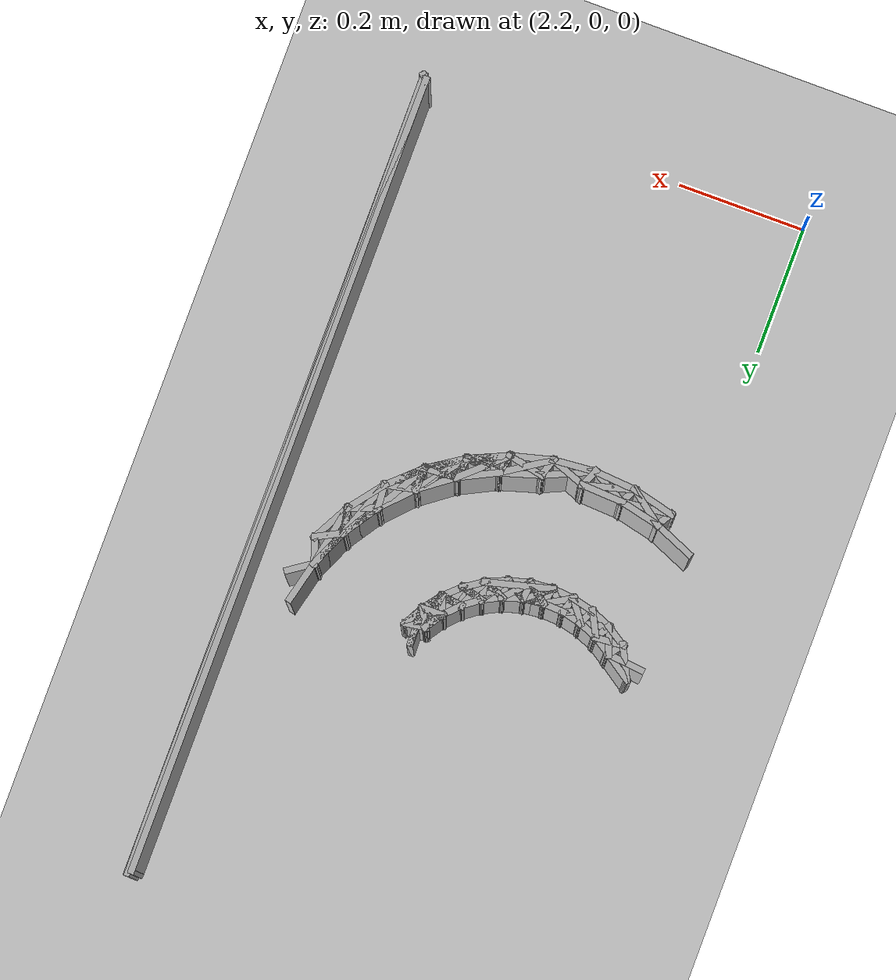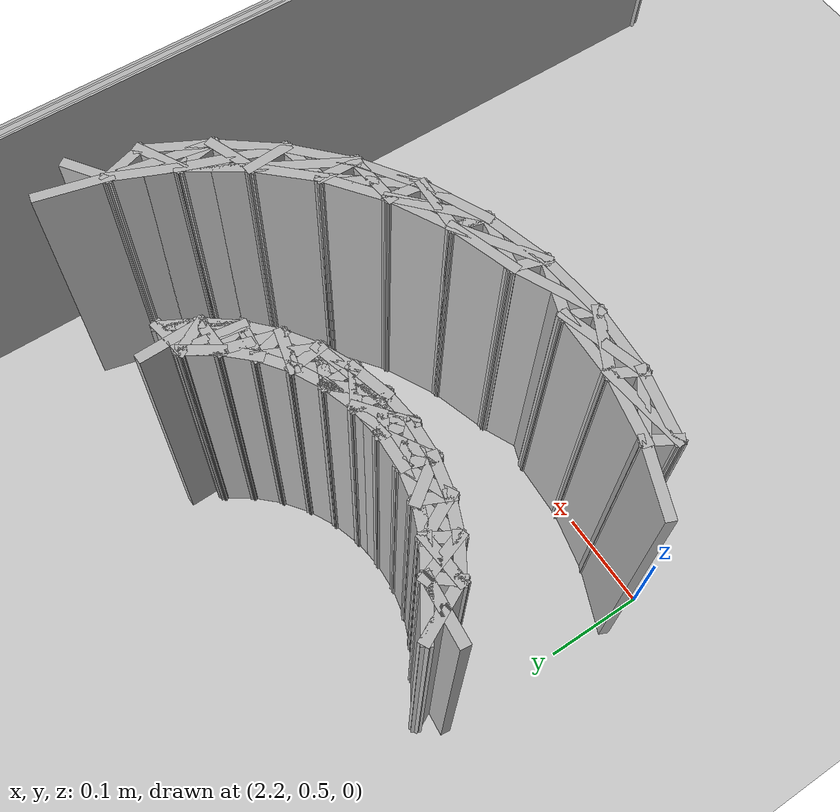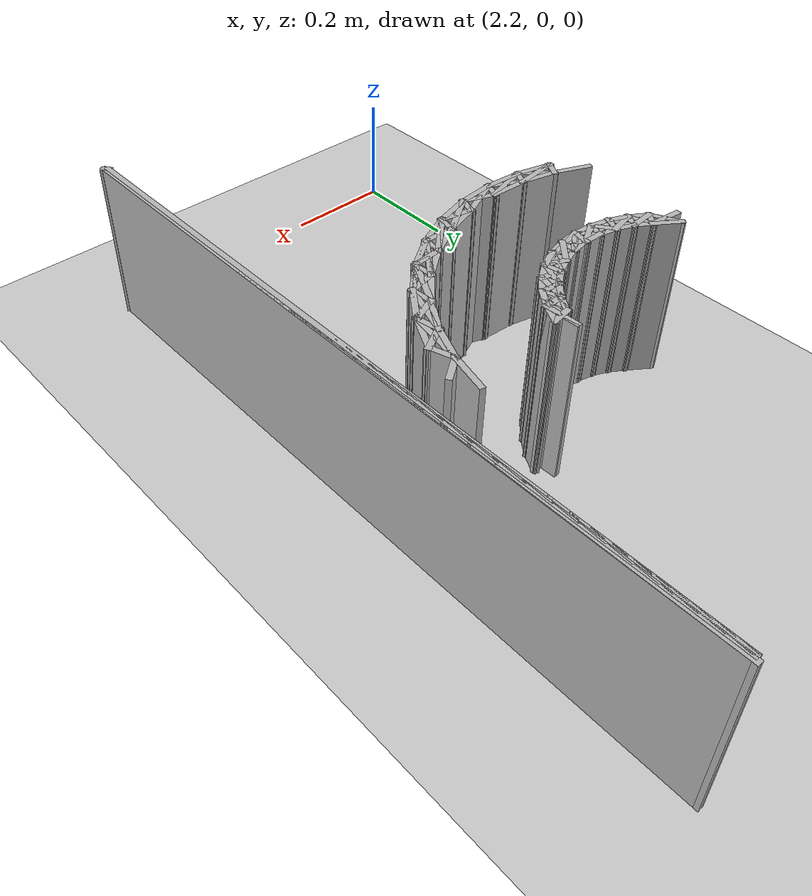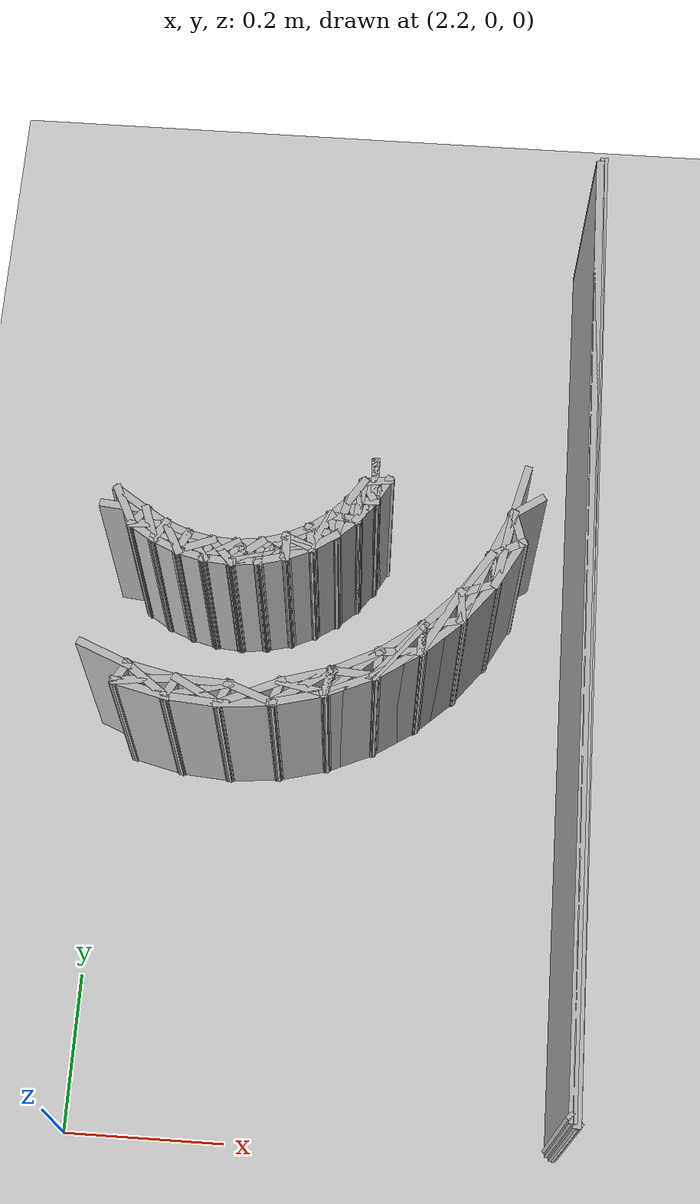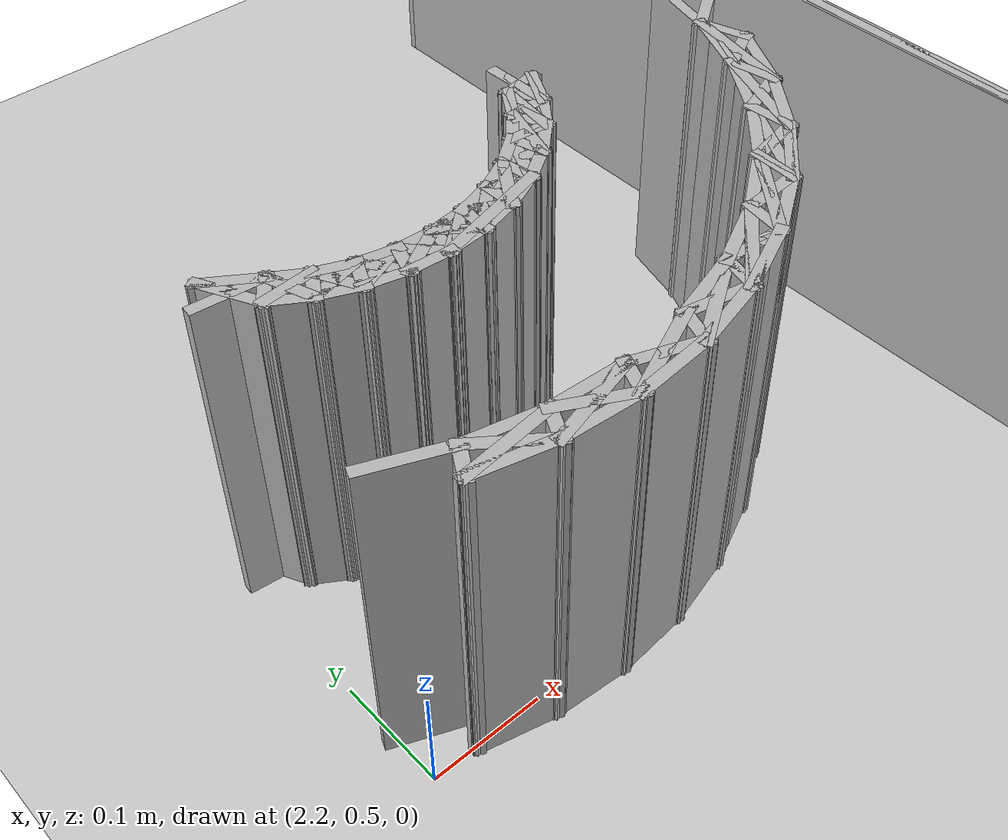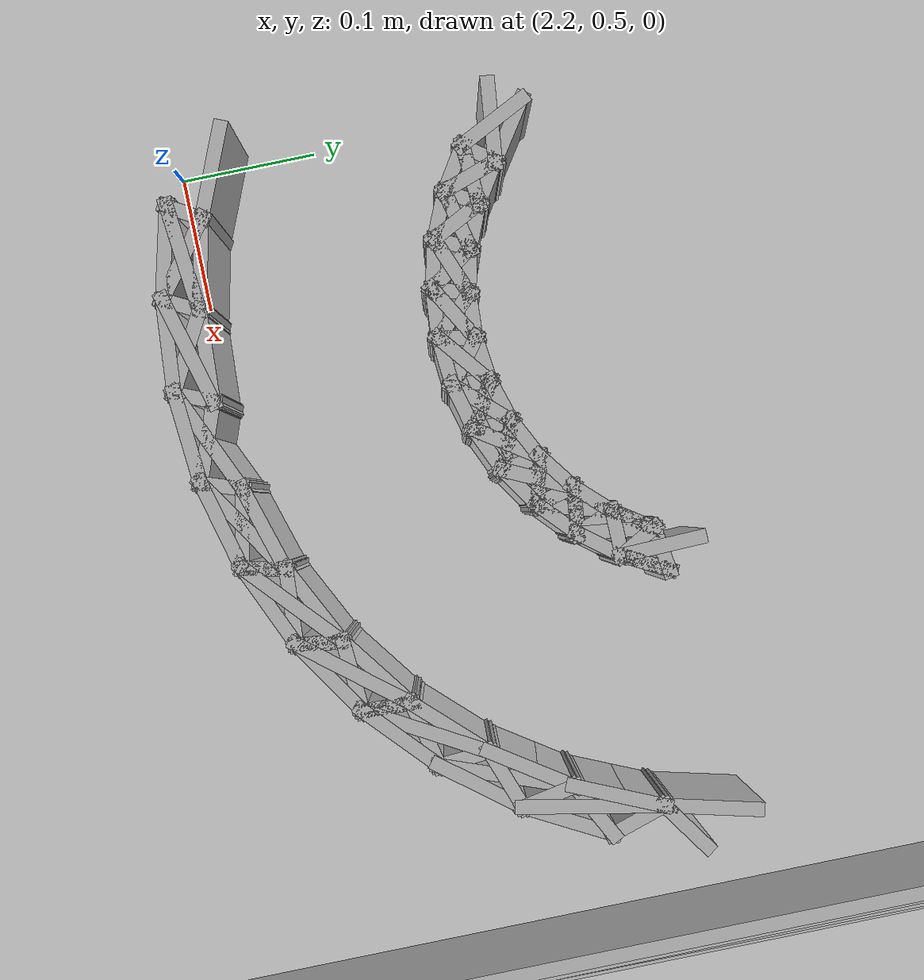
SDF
<sdf version="1.8">
 <world name="rosy_road">
  <model name="ground_plane">
   <link name="l">
    <visual name="v"><geometry><plane><normal>0 0 1</normal><size>4 2</size></plane></geometry></visual>
    <collision name="v"><geometry><plane><normal>0 0 1</normal><size>4 2</size></plane></geometry></collision>
   </link>
  </model>
  <model name="walls">
   <static>true</static>
   <link name="wall_014">
    <pose>2.8051 0.6425 0.150 0 0 1.5708</pose>
    <visual name="v"><geometry><box><size>1.2621 0.0100 0.300</size></box></geometry></visual>
    <collision name="c"><geometry><box><size>1.2621 0.0100 0.300</size></box></geometry></collision>
   </link>
   <link name="wall_015">
    <pose>2.8076 0.6401 0.150 0 0 -1.5668</pose>
    <visual name="v"><geometry><box><size>1.2671 0.0100 0.300</size></box></geometry></visual>
    <collision name="c"><geometry><box><size>1.2671 0.0100 0.300</size></box></geometry></collision>
   </link>
   <link name="wall_016">
    <pose>2.8076 0.0150 0.150 0 0 2.3562</pose>
    <visual name="v"><geometry><box><size>0.0200 0.0100 0.300</size></box></geometry></visual>
    <collision name="c"><geometry><box><size>0.0200 0.0100 0.300</size></box></geometry></collision>
   </link>
   <link name="wall_017">
    <pose>2.8076 0.6450 0.150 0 0 1.5668</pose>
    <visual name="v"><geometry><box><size>1.2671 0.0100 0.300</size></box></geometry></visual>
    <collision name="c"><geometry><box><size>1.2671 0.0100 0.300</size></box></geometry></collision>
   </link>
   <link name="wall_018">
    <pose>2.8101 0.6425 0.150 0 0 -1.5708</pose>
    <visual name="v"><geometry><box><size>1.2721 0.0100 0.300</size></box></geometry></visual>
    <collision name="c"><geometry><box><size>1.2721 0.0100 0.300</size></box></geometry></collision>
   </link>
   <link name="wall_230">
    <pose>2.7181 0.7805 0.150 0 0 -1.8131</pose>
    <visual name="v"><geometry><box><size>0.0749 0.0100 0.300</size></box></geometry></visual>
    <collision name="c"><geometry><box><size>0.0749 0.0100 0.300</size></box></geometry></collision>
   </link>
   <link name="wall_250">
    <pose>2.6979 0.7212 0.150 0 0 -1.9847</pose>
    <visual name="v"><geometry><box><size>0.0749 0.0100 0.300</size></box></geometry></visual>
    <collision name="c"><geometry><box><size>0.0749 0.0100 0.300</size></box></geometry></collision>
   </link>
   <link name="wall_251">
    <pose>2.6979 0.7212 0.150 0 0 1.1569</pose>
    <visual name="v"><geometry><box><size>0.0749 0.0100 0.300</size></box></geometry></visual>
    <collision name="c"><geometry><box><size>0.0749 0.0100 0.300</size></box></geometry></collision>
   </link>
   <link name="wall_252">
    <pose>2.7014 0.7026 0.150 0 0 -1.7625</pose>
    <visual name="v"><geometry><box><size>0.1086 0.0100 0.300</size></box></geometry></visual>
    <collision name="c"><geometry><box><size>0.1086 0.0100 0.300</size></box></geometry></collision>
   </link>
   <link name="wall_253">
    <pose>2.6888 0.6738 0.150 0 0 1.7542</pose>
    <visual name="v"><geometry><box><size>0.0498 0.0100 0.300</size></box></geometry></visual>
    <collision name="c"><geometry><box><size>0.0498 0.0100 0.300</size></box></geometry></collision>
   </link>
   <link name="wall_254">
    <pose>2.6679 0.6662 0.150 0 0 -2.1584</pose>
    <visual name="v"><geometry><box><size>0.0750 0.0100 0.300</size></box></geometry></visual>
    <collision name="c"><geometry><box><size>0.0750 0.0100 0.300</size></box></geometry></collision>
   </link>
   <link name="wall_255">
    <pose>2.6713 0.6476 0.150 0 0 0.3488</pose>
    <visual name="v"><geometry><box><size>0.0565 0.0100 0.300</size></box></geometry></visual>
    <collision name="c"><geometry><box><size>0.0565 0.0100 0.300</size></box></geometry></collision>
   </link>
   <link name="wall_256">
    <pose>2.6725 0.6298 0.150 0 0 -2.2305</pose>
    <visual name="v"><geometry><box><size>0.0763 0.0100 0.300</size></box></geometry></visual>
    <collision name="c"><geometry><box><size>0.0763 0.0100 0.300</size></box></geometry></collision>
   </link>
   <link name="wall_257">
    <pose>2.6691 0.6484 0.150 0 0 1.2170</pose>
    <visual name="v"><geometry><box><size>0.1058 0.0100 0.300</size></box></geometry></visual>
    <collision name="c"><geometry><box><size>0.1058 0.0100 0.300</size></box></geometry></collision>
   </link>
   <link name="wall_258">
    <pose>2.7039 0.7021 0.150 0 0 0.4817</pose>
    <visual name="v"><geometry><box><size>0.0541 0.0100 0.300</size></box></geometry></visual>
    <collision name="c"><geometry><box><size>0.0541 0.0100 0.300</size></box></geometry></collision>
   </link>
   <link name="wall_259">
    <pose>2.7166 0.7310 0.150 0 0 1.8759</pose>
    <visual name="v"><geometry><box><size>0.0519 0.0100 0.300</size></box></geometry></visual>
    <collision name="c"><geometry><box><size>0.0519 0.0100 0.300</size></box></geometry></collision>
   </link>
   <link name="wall_260">
    <pose>2.7270 0.7614 0.150 0 0 0.6074</pose>
    <visual name="v"><geometry><box><size>0.0519 0.0100 0.300</size></box></geometry></visual>
    <collision name="c"><geometry><box><size>0.0519 0.0100 0.300</size></box></geometry></collision>
   </link>
   <link name="wall_261">
    <pose>2.7074 0.6835 0.150 0 0 -2.0629</pose>
    <visual name="v"><geometry><box><size>0.0763 0.0100 0.300</size></box></geometry></visual>
    <collision name="c"><geometry><box><size>0.0763 0.0100 0.300</size></box></geometry></collision>
   </link>
   <link name="wall_274">
    <pose>2.6888 0.6738 0.150 0 0 -1.3874</pose>
    <visual name="v"><geometry><box><size>0.0498 0.0100 0.300</size></box></geometry></visual>
    <collision name="c"><geometry><box><size>0.0498 0.0100 0.300</size></box></geometry></collision>
   </link>
   <link name="wall_275">
    <pose>2.6292 0.5825 0.150 0 0 -2.3925</pose>
    <visual name="v"><geometry><box><size>0.0763 0.0100 0.300</size></box></geometry></visual>
    <collision name="c"><geometry><box><size>0.0763 0.0100 0.300</size></box></geometry></collision>
   </link>
   <link name="wall_276">
    <pose>2.6280 0.6003 0.150 0 0 1.0580</pose>
    <visual name="v"><geometry><box><size>0.1031 0.0100 0.300</size></box></geometry></visual>
    <collision name="c"><geometry><box><size>0.1031 0.0100 0.300</size></box></geometry></collision>
   </link>
   <link name="wall_277">
    <pose>2.6288 0.6171 0.150 0 0 -2.3292</pose>
    <visual name="v"><geometry><box><size>0.0750 0.0100 0.300</size></box></geometry></visual>
    <collision name="c"><geometry><box><size>0.0750 0.0100 0.300</size></box></geometry></collision>
   </link>
   <link name="wall_278">
    <pose>2.6300 0.5993 0.150 0 0 0.2175</pose>
    <visual name="v"><geometry><box><size>0.0588 0.0100 0.300</size></box></geometry></visual>
    <collision name="c"><geometry><box><size>0.0588 0.0100 0.300</size></box></geometry></collision>
   </link>
   <link name="wall_279">
    <pose>2.6516 0.6222 0.150 0 0 1.6381</pose>
    <visual name="v"><geometry><box><size>0.0477 0.0100 0.300</size></box></geometry></visual>
    <collision name="c"><geometry><box><size>0.0477 0.0100 0.300</size></box></geometry></collision>
   </link>
   <link name="wall_280">
    <pose>2.6679 0.6662 0.150 0 0 0.9832</pose>
    <visual name="v"><geometry><box><size>0.0750 0.0100 0.300</size></box></geometry></visual>
    <collision name="c"><geometry><box><size>0.0750 0.0100 0.300</size></box></geometry></collision>
   </link>
   <link name="wall_281">
    <pose>2.7039 0.7021 0.150 0 0 0.4817</pose>
    <visual name="v"><geometry><box><size>0.0541 0.0100 0.300</size></box></geometry></visual>
    <collision name="c"><geometry><box><size>0.0541 0.0100 0.300</size></box></geometry></collision>
   </link>
   <link name="wall_282">
    <pose>2.7166 0.7310 0.150 0 0 1.8759</pose>
    <visual name="v"><geometry><box><size>0.0519 0.0100 0.300</size></box></geometry></visual>
    <collision name="c"><geometry><box><size>0.0519 0.0100 0.300</size></box></geometry></collision>
   </link>
   <link name="wall_283">
    <pose>2.7270 0.7614 0.150 0 0 0.6074</pose>
    <visual name="v"><geometry><box><size>0.0519 0.0100 0.300</size></box></geometry></visual>
    <collision name="c"><geometry><box><size>0.0519 0.0100 0.300</size></box></geometry></collision>
   </link>
   <link name="wall_290">
    <pose>2.5796 0.5598 0.150 0 0 -2.2447</pose>
    <visual name="v"><geometry><box><size>0.1003 0.0100 0.300</size></box></geometry></visual>
    <collision name="c"><geometry><box><size>0.1003 0.0100 0.300</size></box></geometry></collision>
   </link>
   <link name="wall_291">
    <pose>2.5789 0.5430 0.150 0 0 0.5815</pose>
    <visual name="v"><geometry><box><size>0.0763 0.0100 0.300</size></box></geometry></visual>
    <collision name="c"><geometry><box><size>0.0763 0.0100 0.300</size></box></geometry></collision>
   </link>
   <link name="wall_292">
    <pose>2.5811 0.5587 0.150 0 0 -3.0644</pose>
    <visual name="v"><geometry><box><size>0.0612 0.0100 0.300</size></box></geometry></visual>
    <collision name="c"><geometry><box><size>0.0612 0.0100 0.300</size></box></geometry></collision>
   </link>
   <link name="wall_293">
    <pose>2.5818 0.5756 0.150 0 0 0.6387</pose>
    <visual name="v"><geometry><box><size>0.0749 0.0100 0.300</size></box></geometry></visual>
    <collision name="c"><geometry><box><size>0.0749 0.0100 0.300</size></box></geometry></collision>
   </link>
   <link name="wall_294">
    <pose>2.6064 0.5775 0.150 0 0 -1.6123</pose>
    <visual name="v"><geometry><box><size>0.0457 0.0100 0.300</size></box></geometry></visual>
    <collision name="c"><geometry><box><size>0.0457 0.0100 0.300</size></box></geometry></collision>
   </link>
   <link name="wall_295">
    <pose>2.6292 0.5825 0.150 0 0 0.7491</pose>
    <visual name="v"><geometry><box><size>0.0763 0.0100 0.300</size></box></geometry></visual>
    <collision name="c"><geometry><box><size>0.0763 0.0100 0.300</size></box></geometry></collision>
   </link>
   <link name="wall_296">
    <pose>2.6516 0.6222 0.150 0 0 1.6381</pose>
    <visual name="v"><geometry><box><size>0.0477 0.0100 0.300</size></box></geometry></visual>
    <collision name="c"><geometry><box><size>0.0477 0.0100 0.300</size></box></geometry></collision>
   </link>
   <link name="wall_297">
    <pose>2.6713 0.6476 0.150 0 0 0.3488</pose>
    <visual name="v"><geometry><box><size>0.0565 0.0100 0.300</size></box></geometry></visual>
    <collision name="c"><geometry><box><size>0.0565 0.0100 0.300</size></box></geometry></collision>
   </link>
   <link name="wall_303">
    <pose>2.5789 0.5430 0.150 0 0 -2.5601</pose>
    <visual name="v"><geometry><box><size>0.0763 0.0100 0.300</size></box></geometry></visual>
    <collision name="c"><geometry><box><size>0.0763 0.0100 0.300</size></box></geometry></collision>
   </link>
   <link name="wall_304">
    <pose>2.5543 0.5410 0.150 0 0 1.4258</pose>
    <visual name="v"><geometry><box><size>0.0438 0.0100 0.300</size></box></geometry></visual>
    <collision name="c"><geometry><box><size>0.0438 0.0100 0.300</size></box></geometry></collision>
   </link>
   <link name="wall_305">
    <pose>2.5811 0.5587 0.150 0 0 0.0772</pose>
    <visual name="v"><geometry><box><size>0.0612 0.0100 0.300</size></box></geometry></visual>
    <collision name="c"><geometry><box><size>0.0612 0.0100 0.300</size></box></geometry></collision>
   </link>
   <link name="wall_306">
    <pose>2.6064 0.5775 0.150 0 0 1.5293</pose>
    <visual name="v"><geometry><box><size>0.0457 0.0100 0.300</size></box></geometry></visual>
    <collision name="c"><geometry><box><size>0.0457 0.0100 0.300</size></box></geometry></collision>
   </link>
   <link name="wall_307">
    <pose>2.5249 0.5280 0.150 0 0 -2.4041</pose>
    <visual name="v"><geometry><box><size>0.0977 0.0100 0.300</size></box></geometry></visual>
    <collision name="c"><geometry><box><size>0.0977 0.0100 0.300</size></box></geometry></collision>
   </link>
   <link name="wall_308">
    <pose>2.5226 0.5122 0.150 0 0 0.4178</pose>
    <visual name="v"><geometry><box><size>0.0763 0.0100 0.300</size></box></geometry></visual>
    <collision name="c"><geometry><box><size>0.0763 0.0100 0.300</size></box></geometry></collision>
   </link>
   <link name="wall_309">
    <pose>2.5261 0.5269 0.150 0 0 3.0798</pose>
    <visual name="v"><geometry><box><size>0.0638 0.0100 0.300</size></box></geometry></visual>
    <collision name="c"><geometry><box><size>0.0638 0.0100 0.300</size></box></geometry></collision>
   </link>
   <link name="wall_310">
    <pose>2.5284 0.5426 0.150 0 0 0.4658</pose>
    <visual name="v"><geometry><box><size>0.0750 0.0100 0.300</size></box></geometry></visual>
    <collision name="c"><geometry><box><size>0.0750 0.0100 0.300</size></box></geometry></collision>
   </link>
   <link name="wall_311">
    <pose>2.5543 0.5410 0.150 0 0 -1.7158</pose>
    <visual name="v"><geometry><box><size>0.0438 0.0100 0.300</size></box></geometry></visual>
    <collision name="c"><geometry><box><size>0.0438 0.0100 0.300</size></box></geometry></collision>
   </link>
   <link name="wall_312">
    <pose>2.5796 0.5598 0.150 0 0 0.8969</pose>
    <visual name="v"><geometry><box><size>0.1003 0.0100 0.300</size></box></geometry></visual>
    <collision name="c"><geometry><box><size>0.1003 0.0100 0.300</size></box></geometry></collision>
   </link>
   <link name="wall_313">
    <pose>2.6300 0.5993 0.150 0 0 0.2175</pose>
    <visual name="v"><geometry><box><size>0.0588 0.0100 0.300</size></box></geometry></visual>
    <collision name="c"><geometry><box><size>0.0588 0.0100 0.300</size></box></geometry></collision>
   </link>
   <link name="wall_319">
    <pose>2.4621 0.4911 0.150 0 0 0.2529</pose>
    <visual name="v"><geometry><box><size>0.0763 0.0100 0.300</size></box></geometry></visual>
    <collision name="c"><geometry><box><size>0.0763 0.0100 0.300</size></box></geometry></collision>
   </link>
   <link name="wall_320">
    <pose>2.4666 0.5048 0.150 0 0 2.9355</pose>
    <visual name="v"><geometry><box><size>0.0662 0.0100 0.300</size></box></geometry></visual>
    <collision name="c"><geometry><box><size>0.0662 0.0100 0.300</size></box></geometry></collision>
   </link>
   <link name="wall_321">
    <pose>2.4702 0.5194 0.150 0 0 0.2936</pose>
    <visual name="v"><geometry><box><size>0.0749 0.0100 0.300</size></box></geometry></visual>
    <collision name="c"><geometry><box><size>0.0749 0.0100 0.300</size></box></geometry></collision>
   </link>
   <link name="wall_322">
    <pose>2.4968 0.5139 0.150 0 0 -1.8085</pose>
    <visual name="v"><geometry><box><size>0.0421 0.0100 0.300</size></box></geometry></visual>
    <collision name="c"><geometry><box><size>0.0421 0.0100 0.300</size></box></geometry></collision>
   </link>
   <link name="wall_323">
    <pose>2.5249 0.5280 0.150 0 0 0.7375</pose>
    <visual name="v"><geometry><box><size>0.0977 0.0100 0.300</size></box></geometry></visual>
    <collision name="c"><geometry><box><size>0.0977 0.0100 0.300</size></box></geometry></collision>
   </link>
   <link name="wall_324">
    <pose>2.4656 0.5058 0.150 0 0 -2.5623</pose>
    <visual name="v"><geometry><box><size>0.0949 0.0100 0.300</size></box></geometry></visual>
    <collision name="c"><geometry><box><size>0.0949 0.0100 0.300</size></box></geometry></collision>
   </link>
   <link name="wall_325">
    <pose>2.3989 0.4803 0.150 0 0 -3.0560</pose>
    <visual name="v"><geometry><box><size>0.0763 0.0100 0.300</size></box></geometry></visual>
    <collision name="c"><geometry><box><size>0.0763 0.0100 0.300</size></box></geometry></collision>
   </link>
   <link name="wall_326">
    <pose>2.4034 0.4940 0.150 0 0 0.4196</pose>
    <visual name="v"><geometry><box><size>0.0923 0.0100 0.300</size></box></geometry></visual>
    <collision name="c"><geometry><box><size>0.0923 0.0100 0.300</size></box></geometry></collision>
   </link>
   <link name="wall_327">
    <pose>2.4355 0.4967 0.150 0 0 -1.8970</pose>
    <visual name="v"><geometry><box><size>0.0407 0.0100 0.300</size></box></geometry></visual>
    <collision name="c"><geometry><box><size>0.0407 0.0100 0.300</size></box></geometry></collision>
   </link>
   <link name="wall_328">
    <pose>2.4043 0.4930 0.150 0 0 2.7876</pose>
    <visual name="v"><geometry><box><size>0.0688 0.0100 0.300</size></box></geometry></visual>
    <collision name="c"><geometry><box><size>0.0688 0.0100 0.300</size></box></geometry></collision>
   </link>
   <link name="wall_329">
    <pose>2.4702 0.5194 0.150 0 0 0.2936</pose>
    <visual name="v"><geometry><box><size>0.0749 0.0100 0.300</size></box></geometry></visual>
    <collision name="c"><geometry><box><size>0.0749 0.0100 0.300</size></box></geometry></collision>
   </link>
   <link name="wall_330">
    <pose>2.5261 0.5269 0.150 0 0 -0.0618</pose>
    <visual name="v"><geometry><box><size>0.0638 0.0100 0.300</size></box></geometry></visual>
    <collision name="c"><geometry><box><size>0.0638 0.0100 0.300</size></box></geometry></collision>
   </link>
   <link name="wall_331">
    <pose>2.5226 0.5122 0.150 0 0 -2.7238</pose>
    <visual name="v"><geometry><box><size>0.0763 0.0100 0.300</size></box></geometry></visual>
    <collision name="c"><geometry><box><size>0.0763 0.0100 0.300</size></box></geometry></collision>
   </link>
   <link name="wall_332">
    <pose>2.4968 0.5139 0.150 0 0 1.3331</pose>
    <visual name="v"><geometry><box><size>0.0421 0.0100 0.300</size></box></geometry></visual>
    <collision name="c"><geometry><box><size>0.0421 0.0100 0.300</size></box></geometry></collision>
   </link>
   <link name="wall_333">
    <pose>2.4656 0.5058 0.150 0 0 -2.5623</pose>
    <visual name="v"><geometry><box><size>0.0949 0.0100 0.300</size></box></geometry></visual>
    <collision name="c"><geometry><box><size>0.0949 0.0100 0.300</size></box></geometry></collision>
   </link>
   <link name="wall_334">
    <pose>2.4621 0.4911 0.150 0 0 0.2529</pose>
    <visual name="v"><geometry><box><size>0.0763 0.0100 0.300</size></box></geometry></visual>
    <collision name="c"><geometry><box><size>0.0763 0.0100 0.300</size></box></geometry></collision>
   </link>
   <link name="wall_335">
    <pose>2.4666 0.5048 0.150 0 0 2.9355</pose>
    <visual name="v"><geometry><box><size>0.0662 0.0100 0.300</size></box></geometry></visual>
    <collision name="c"><geometry><box><size>0.0662 0.0100 0.300</size></box></geometry></collision>
   </link>
   <link name="wall_346">
    <pose>2.3401 0.4927 0.150 0 0 -2.8782</pose>
    <visual name="v"><geometry><box><size>0.0896 0.0100 0.300</size></box></geometry></visual>
    <collision name="c"><geometry><box><size>0.0896 0.0100 0.300</size></box></geometry></collision>
   </link>
   <link name="wall_347">
    <pose>2.3348 0.4801 0.150 0 0 -0.0778</pose>
    <visual name="v"><geometry><box><size>0.0763 0.0100 0.300</size></box></geometry></visual>
    <collision name="c"><geometry><box><size>0.0763 0.0100 0.300</size></box></geometry></collision>
   </link>
   <link name="wall_348">
    <pose>2.3408 0.4918 0.150 0 0 2.6417</pose>
    <visual name="v"><geometry><box><size>0.0712 0.0100 0.300</size></box></geometry></visual>
    <collision name="c"><geometry><box><size>0.0712 0.0100 0.300</size></box></geometry></collision>
   </link>
   <link name="wall_349">
    <pose>2.3462 0.5044 0.150 0 0 -0.0509</pose>
    <visual name="v"><geometry><box><size>0.0749 0.0100 0.300</size></box></geometry></visual>
    <collision name="c"><geometry><box><size>0.0749 0.0100 0.300</size></box></geometry></collision>
   </link>
   <link name="wall_350">
    <pose>2.3722 0.4902 0.150 0 0 -1.9757</pose>
    <visual name="v"><geometry><box><size>0.0394 0.0100 0.300</size></box></geometry></visual>
    <collision name="c"><geometry><box><size>0.0394 0.0100 0.300</size></box></geometry></collision>
   </link>
   <link name="wall_356">
    <pose>2.2775 0.5020 0.150 0 0 -3.0361</pose>
    <visual name="v"><geometry><box><size>0.0870 0.0100 0.300</size></box></geometry></visual>
    <collision name="c"><geometry><box><size>0.0870 0.0100 0.300</size></box></geometry></collision>
   </link>
   <link name="wall_357">
    <pose>2.2714 0.4904 0.150 0 0 -0.2431</pose>
    <visual name="v"><geometry><box><size>0.0764 0.0100 0.300</size></box></geometry></visual>
    <collision name="c"><geometry><box><size>0.0764 0.0100 0.300</size></box></geometry></collision>
   </link>
   <link name="wall_358">
    <pose>2.2781 0.5013 0.150 0 0 2.4926</pose>
    <visual name="v"><geometry><box><size>0.0739 0.0100 0.300</size></box></geometry></visual>
    <collision name="c"><geometry><box><size>0.0739 0.0100 0.300</size></box></geometry></collision>
   </link>
   <link name="wall_359">
    <pose>2.2841 0.5130 0.150 0 0 -0.2242</pose>
    <visual name="v"><geometry><box><size>0.0750 0.0100 0.300</size></box></geometry></visual>
    <collision name="c"><geometry><box><size>0.0750 0.0100 0.300</size></box></geometry></collision>
   </link>
   <link name="wall_360">
    <pose>2.3087 0.4943 0.150 0 0 -2.0480</pose>
    <visual name="v"><geometry><box><size>0.0383 0.0100 0.300</size></box></geometry></visual>
    <collision name="c"><geometry><box><size>0.0383 0.0100 0.300</size></box></geometry></collision>
   </link>
   <link name="wall_369">
    <pose>2.2244 0.5322 0.150 0 0 -0.3982</pose>
    <visual name="v"><geometry><box><size>0.0749 0.0100 0.300</size></box></geometry></visual>
    <collision name="c"><geometry><box><size>0.0749 0.0100 0.300</size></box></geometry></collision>
   </link>
   <link name="wall_370">
    <pose>2.2468 0.5091 0.150 0 0 -2.1132</pose>
    <visual name="v"><geometry><box><size>0.0376 0.0100 0.300</size></box></geometry></visual>
    <collision name="c"><geometry><box><size>0.0376 0.0100 0.300</size></box></geometry></collision>
   </link>
   <link name="wall_979">
    <pose>2.5362 0.7828 0.150 0 0 -1.5428</pose>
    <visual name="v"><geometry><box><size>0.0656 0.0100 0.300</size></box></geometry></visual>
    <collision name="c"><geometry><box><size>0.0656 0.0100 0.300</size></box></geometry></collision>
   </link>
   <link name="wall_980">
    <pose>2.5300 0.7686 0.150 0 0 2.0779</pose>
    <visual name="v"><geometry><box><size>0.0408 0.0100 0.300</size></box></geometry></visual>
    <collision name="c"><geometry><box><size>0.0408 0.0100 0.300</size></box></geometry></collision>
   </link>
   <link name="wall_981">
    <pose>2.5144 0.7682 0.150 0 0 -2.1570</pose>
    <visual name="v"><geometry><box><size>0.0431 0.0100 0.300</size></box></geometry></visual>
    <collision name="c"><geometry><box><size>0.0431 0.0100 0.300</size></box></geometry></collision>
   </link>
   <link name="wall_982">
    <pose>2.5214 0.7556 0.150 0 0 0.0224</pose>
    <visual name="v"><geometry><box><size>0.0432 0.0100 0.300</size></box></geometry></visual>
    <collision name="c"><geometry><box><size>0.0432 0.0100 0.300</size></box></geometry></collision>
   </link>
   <link name="wall_983">
    <pose>2.5267 0.7426 0.150 0 0 -2.2285</pose>
    <visual name="v"><geometry><box><size>0.0459 0.0100 0.300</size></box></geometry></visual>
    <collision name="c"><geometry><box><size>0.0459 0.0100 0.300</size></box></geometry></collision>
   </link>
   <link name="wall_984">
    <pose>2.5196 0.7552 0.150 0 0 1.4427</pose>
    <visual name="v"><geometry><box><size>0.0644 0.0100 0.300</size></box></geometry></visual>
    <collision name="c"><geometry><box><size>0.0644 0.0100 0.300</size></box></geometry></collision>
   </link>
   <link name="wall_985">
    <pose>2.5380 0.7835 0.150 0 0 0.1489</pose>
    <visual name="v"><geometry><box><size>0.0423 0.0100 0.300</size></box></geometry></visual>
    <collision name="c"><geometry><box><size>0.0423 0.0100 0.300</size></box></geometry></collision>
   </link>
   <link name="wall_988">
    <pose>2.5450 0.7709 0.150 0 0 -2.0649</pose>
    <visual name="v"><geometry><box><size>0.0457 0.0100 0.300</size></box></geometry></visual>
    <collision name="c"><geometry><box><size>0.0457 0.0100 0.300</size></box></geometry></collision>
   </link>
   <link name="wall_989">
    <pose>2.5362 0.7828 0.150 0 0 1.5988</pose>
    <visual name="v"><geometry><box><size>0.0656 0.0100 0.300</size></box></geometry></visual>
    <collision name="c"><geometry><box><size>0.0656 0.0100 0.300</size></box></geometry></collision>
   </link>
   <link name="wall_1010">
    <pose>2.5196 0.7552 0.150 0 0 -1.6989</pose>
    <visual name="v"><geometry><box><size>0.0644 0.0100 0.300</size></box></geometry></visual>
    <collision name="c"><geometry><box><size>0.0644 0.0100 0.300</size></box></geometry></collision>
   </link>
   <link name="wall_1011">
    <pose>2.5004 0.7310 0.150 0 0 3.0292</pose>
    <visual name="v"><geometry><box><size>0.0441 0.0100 0.300</size></box></geometry></visual>
    <collision name="c"><geometry><box><size>0.0441 0.0100 0.300</size></box></geometry></collision>
   </link>
   <link name="wall_1012">
    <pose>2.4951 0.7440 0.150 0 0 0.8104</pose>
    <visual name="v"><geometry><box><size>0.0431 0.0100 0.300</size></box></geometry></visual>
    <collision name="c"><geometry><box><size>0.0431 0.0100 0.300</size></box></geometry></collision>
   </link>
   <link name="wall_1013">
    <pose>2.4987 0.7308 0.150 0 0 -1.8542</pose>
    <visual name="v"><geometry><box><size>0.0631 0.0100 0.300</size></box></geometry></visual>
    <collision name="c"><geometry><box><size>0.0631 0.0100 0.300</size></box></geometry></collision>
   </link>
   <link name="wall_1014">
    <pose>2.5039 0.7177 0.150 0 0 0.7478</pose>
    <visual name="v"><geometry><box><size>0.0458 0.0100 0.300</size></box></geometry></visual>
    <collision name="c"><geometry><box><size>0.0458 0.0100 0.300</size></box></geometry></collision>
   </link>
   <link name="wall_1015">
    <pose>2.5111 0.7422 0.150 0 0 1.9533</pose>
    <visual name="v"><geometry><box><size>0.0401 0.0100 0.300</size></box></geometry></visual>
    <collision name="c"><geometry><box><size>0.0401 0.0100 0.300</size></box></geometry></collision>
   </link>
   <link name="wall_1016">
    <pose>2.5144 0.7682 0.150 0 0 0.9846</pose>
    <visual name="v"><geometry><box><size>0.0431 0.0100 0.300</size></box></geometry></visual>
    <collision name="c"><geometry><box><size>0.0431 0.0100 0.300</size></box></geometry></collision>
   </link>
   <link name="wall_1024">
    <pose>2.4987 0.7308 0.150 0 0 -1.8542</pose>
    <visual name="v"><geometry><box><size>0.0631 0.0100 0.300</size></box></geometry></visual>
    <collision name="c"><geometry><box><size>0.0631 0.0100 0.300</size></box></geometry></collision>
   </link>
   <link name="wall_1025">
    <pose>2.4755 0.7103 0.150 0 0 2.8937</pose>
    <visual name="v"><geometry><box><size>0.0450 0.0100 0.300</size></box></geometry></visual>
    <collision name="c"><geometry><box><size>0.0450 0.0100 0.300</size></box></geometry></collision>
   </link>
   <link name="wall_1026">
    <pose>2.4719 0.7235 0.150 0 0 0.6390</pose>
    <visual name="v"><geometry><box><size>0.0430 0.0100 0.300</size></box></geometry></visual>
    <collision name="c"><geometry><box><size>0.0430 0.0100 0.300</size></box></geometry></collision>
   </link>
   <link name="wall_1027">
    <pose>2.4739 0.7102 0.150 0 0 -2.0075</pose>
    <visual name="v"><geometry><box><size>0.0619 0.0100 0.300</size></box></geometry></visual>
    <collision name="c"><geometry><box><size>0.0619 0.0100 0.300</size></box></geometry></collision>
   </link>
   <link name="wall_1028">
    <pose>2.4774 0.6969 0.150 0 0 0.5831</pose>
    <visual name="v"><geometry><box><size>0.0458 0.0100 0.300</size></box></geometry></visual>
    <collision name="c"><geometry><box><size>0.0458 0.0100 0.300</size></box></geometry></collision>
   </link>
   <link name="wall_1029">
    <pose>2.4879 0.7195 0.150 0 0 1.8316</pose>
    <visual name="v"><geometry><box><size>0.0395 0.0100 0.300</size></box></geometry></visual>
    <collision name="c"><geometry><box><size>0.0395 0.0100 0.300</size></box></geometry></collision>
   </link>
   <link name="wall_1030">
    <pose>2.4951 0.7440 0.150 0 0 0.8104</pose>
    <visual name="v"><geometry><box><size>0.0431 0.0100 0.300</size></box></geometry></visual>
    <collision name="c"><geometry><box><size>0.0431 0.0100 0.300</size></box></geometry></collision>
   </link>
   <link name="wall_1031">
    <pose>2.5214 0.7556 0.150 0 0 0.0224</pose>
    <visual name="v"><geometry><box><size>0.0432 0.0100 0.300</size></box></geometry></visual>
    <collision name="c"><geometry><box><size>0.0432 0.0100 0.300</size></box></geometry></collision>
   </link>
   <link name="wall_1032">
    <pose>2.5450 0.7709 0.150 0 0 1.0767</pose>
    <visual name="v"><geometry><box><size>0.0457 0.0100 0.300</size></box></geometry></visual>
    <collision name="c"><geometry><box><size>0.0457 0.0100 0.300</size></box></geometry></collision>
   </link>
   <link name="wall_1038">
    <pose>2.4739 0.7102 0.150 0 0 -2.0075</pose>
    <visual name="v"><geometry><box><size>0.0619 0.0100 0.300</size></box></geometry></visual>
    <collision name="c"><geometry><box><size>0.0619 0.0100 0.300</size></box></geometry></collision>
   </link>
   <link name="wall_1039">
    <pose>2.4476 0.6940 0.150 0 0 2.7556</pose>
    <visual name="v"><geometry><box><size>0.0460 0.0100 0.300</size></box></geometry></visual>
    <collision name="c"><geometry><box><size>0.0460 0.0100 0.300</size></box></geometry></collision>
   </link>
   <link name="wall_1040">
    <pose>2.4457 0.7073 0.150 0 0 0.4651</pose>
    <visual name="v"><geometry><box><size>0.0430 0.0100 0.300</size></box></geometry></visual>
    <collision name="c"><geometry><box><size>0.0430 0.0100 0.300</size></box></geometry></collision>
   </link>
   <link name="wall_1041">
    <pose>2.4459 0.6941 0.150 0 0 -2.1616</pose>
    <visual name="v"><geometry><box><size>0.0606 0.0100 0.300</size></box></geometry></visual>
    <collision name="c"><geometry><box><size>0.0606 0.0100 0.300</size></box></geometry></collision>
   </link>
   <link name="wall_1042">
    <pose>2.4479 0.6807 0.150 0 0 0.4173</pose>
    <visual name="v"><geometry><box><size>0.0458 0.0100 0.300</size></box></geometry></visual>
    <collision name="c"><geometry><box><size>0.0458 0.0100 0.300</size></box></geometry></collision>
   </link>
   <link name="wall_1043">
    <pose>2.4614 0.7010 0.150 0 0 1.7122</pose>
    <visual name="v"><geometry><box><size>0.0390 0.0100 0.300</size></box></geometry></visual>
    <collision name="c"><geometry><box><size>0.0390 0.0100 0.300</size></box></geometry></collision>
   </link>
   <link name="wall_1044">
    <pose>2.4719 0.7235 0.150 0 0 0.6390</pose>
    <visual name="v"><geometry><box><size>0.0430 0.0100 0.300</size></box></geometry></visual>
    <collision name="c"><geometry><box><size>0.0430 0.0100 0.300</size></box></geometry></collision>
   </link>
   <link name="wall_1045">
    <pose>2.5004 0.7310 0.150 0 0 -0.1124</pose>
    <visual name="v"><geometry><box><size>0.0441 0.0100 0.300</size></box></geometry></visual>
    <collision name="c"><geometry><box><size>0.0441 0.0100 0.300</size></box></geometry></collision>
   </link>
   <link name="wall_1046">
    <pose>2.5267 0.7426 0.150 0 0 0.9131</pose>
    <visual name="v"><geometry><box><size>0.0459 0.0100 0.300</size></box></geometry></visual>
    <collision name="c"><geometry><box><size>0.0459 0.0100 0.300</size></box></geometry></collision>
   </link>
   <link name="wall_1052">
    <pose>2.4459 0.6941 0.150 0 0 -2.1616</pose>
    <visual name="v"><geometry><box><size>0.0606 0.0100 0.300</size></box></geometry></visual>
    <collision name="c"><geometry><box><size>0.0606 0.0100 0.300</size></box></geometry></collision>
   </link>
   <link name="wall_1053">
    <pose>2.4160 0.6697 0.150 0 0 -2.8909</pose>
    <visual name="v"><geometry><box><size>0.0459 0.0100 0.300</size></box></geometry></visual>
    <collision name="c"><geometry><box><size>0.0459 0.0100 0.300</size></box></geometry></collision>
   </link>
   <link name="wall_1054">
    <pose>2.4157 0.6830 0.150 0 0 0.8256</pose>
    <visual name="v"><geometry><box><size>0.0595 0.0100 0.300</size></box></geometry></visual>
    <collision name="c"><geometry><box><size>0.0595 0.0100 0.300</size></box></geometry></collision>
   </link>
   <link name="wall_1055">
    <pose>2.4169 0.6959 0.150 0 0 -2.8474</pose>
    <visual name="v"><geometry><box><size>0.0430 0.0100 0.300</size></box></geometry></visual>
    <collision name="c"><geometry><box><size>0.0430 0.0100 0.300</size></box></geometry></collision>
   </link>
   <link name="wall_1056">
    <pose>2.4173 0.6826 0.150 0 0 -0.5238</pose>
    <visual name="v"><geometry><box><size>0.0470 0.0100 0.300</size></box></geometry></visual>
    <collision name="c"><geometry><box><size>0.0470 0.0100 0.300</size></box></geometry></collision>
   </link>
   <link name="wall_1057">
    <pose>2.4321 0.6871 0.150 0 0 1.5934</pose>
    <visual name="v"><geometry><box><size>0.0385 0.0100 0.300</size></box></geometry></visual>
    <collision name="c"><geometry><box><size>0.0385 0.0100 0.300</size></box></geometry></collision>
   </link>
   <link name="wall_1058">
    <pose>2.4457 0.7073 0.150 0 0 0.4651</pose>
    <visual name="v"><geometry><box><size>0.0430 0.0100 0.300</size></box></geometry></visual>
    <collision name="c"><geometry><box><size>0.0430 0.0100 0.300</size></box></geometry></collision>
   </link>
   <link name="wall_1059">
    <pose>2.4755 0.7103 0.150 0 0 -0.2479</pose>
    <visual name="v"><geometry><box><size>0.0450 0.0100 0.300</size></box></geometry></visual>
    <collision name="c"><geometry><box><size>0.0450 0.0100 0.300</size></box></geometry></collision>
   </link>
   <link name="wall_1060">
    <pose>2.5039 0.7177 0.150 0 0 0.7478</pose>
    <visual name="v"><geometry><box><size>0.0458 0.0100 0.300</size></box></geometry></visual>
    <collision name="c"><geometry><box><size>0.0458 0.0100 0.300</size></box></geometry></collision>
   </link>
   <link name="wall_1062">
    <pose>2.2287 0.7278 0.150 0 0 -1.1116</pose>
    <visual name="v"><geometry><box><size>0.0628 0.0100 0.300</size></box></geometry></visual>
    <collision name="c"><geometry><box><size>0.0628 0.0100 0.300</size></box></geometry></collision>
   </link>
   <link name="wall_1064">
    <pose>2.2289 0.7277 0.150 0 0 -0.1040</pose>
    <visual name="v"><geometry><box><size>0.0650 0.0100 0.300</size></box></geometry></visual>
    <collision name="c"><geometry><box><size>0.0650 0.0100 0.300</size></box></geometry></collision>
   </link>
   <link name="wall_1065">
    <pose>2.2364 0.7378 0.150 0 0 2.5445</pose>
    <visual name="v"><geometry><box><size>0.0577 0.0100 0.300</size></box></geometry></visual>
    <collision name="c"><geometry><box><size>0.0577 0.0100 0.300</size></box></geometry></collision>
   </link>
   <link name="wall_1066">
    <pose>2.4169 0.6959 0.150 0 0 -2.8474</pose>
    <visual name="v"><geometry><box><size>0.0430 0.0100 0.300</size></box></geometry></visual>
    <collision name="c"><geometry><box><size>0.0430 0.0100 0.300</size></box></geometry></collision>
   </link>
   <link name="wall_1067">
    <pose>2.3841 0.6770 0.150 0 0 -2.4682</pose>
    <visual name="v"><geometry><box><size>0.0582 0.0100 0.300</size></box></geometry></visual>
    <collision name="c"><geometry><box><size>0.0582 0.0100 0.300</size></box></geometry></collision>
   </link>
   <link name="wall_1068">
    <pose>2.3828 0.6640 0.150 0 0 0.0861</pose>
    <visual name="v"><geometry><box><size>0.0457 0.0100 0.300</size></box></geometry></visual>
    <collision name="c"><geometry><box><size>0.0457 0.0100 0.300</size></box></geometry></collision>
   </link>
   <link name="wall_1069">
    <pose>2.3854 0.6766 0.150 0 0 2.4764</pose>
    <visual name="v"><geometry><box><size>0.0480 0.0100 0.300</size></box></geometry></visual>
    <collision name="c"><geometry><box><size>0.0480 0.0100 0.300</size></box></geometry></collision>
   </link>
   <link name="wall_1070">
    <pose>2.3867 0.6895 0.150 0 0 0.1196</pose>
    <visual name="v"><geometry><box><size>0.0430 0.0100 0.300</size></box></geometry></visual>
    <collision name="c"><geometry><box><size>0.0430 0.0100 0.300</size></box></geometry></collision>
   </link>
   <link name="wall_1071">
    <pose>2.4008 0.6784 0.150 0 0 -1.6670</pose>
    <visual name="v"><geometry><box><size>0.0380 0.0100 0.300</size></box></geometry></visual>
    <collision name="c"><geometry><box><size>0.0380 0.0100 0.300</size></box></geometry></collision>
   </link>
   <link name="wall_1072">
    <pose>2.4157 0.6830 0.150 0 0 0.8256</pose>
    <visual name="v"><geometry><box><size>0.0595 0.0100 0.300</size></box></geometry></visual>
    <collision name="c"><geometry><box><size>0.0595 0.0100 0.300</size></box></geometry></collision>
   </link>
   <link name="wall_1073">
    <pose>2.4476 0.6940 0.150 0 0 -0.3860</pose>
    <visual name="v"><geometry><box><size>0.0460 0.0100 0.300</size></box></geometry></visual>
    <collision name="c"><geometry><box><size>0.0460 0.0100 0.300</size></box></geometry></collision>
   </link>
   <link name="wall_1074">
    <pose>2.4774 0.6969 0.150 0 0 0.5831</pose>
    <visual name="v"><geometry><box><size>0.0458 0.0100 0.300</size></box></geometry></visual>
    <collision name="c"><geometry><box><size>0.0458 0.0100 0.300</size></box></geometry></collision>
   </link>
   <link name="wall_1075">
    <pose>2.2477 0.7150 0.150 0 0 0.9129</pose>
    <visual name="v"><geometry><box><size>0.0370 0.0100 0.300</size></box></geometry></visual>
    <collision name="c"><geometry><box><size>0.0370 0.0100 0.300</size></box></geometry></collision>
   </link>
   <link name="wall_1076">
    <pose>2.2619 0.7058 0.150 0 0 -1.2396</pose>
    <visual name="v"><geometry><box><size>0.0523 0.0100 0.300</size></box></geometry></visual>
    <collision name="c"><geometry><box><size>0.0523 0.0100 0.300</size></box></geometry></collision>
   </link>
   <link name="wall_1077">
    <pose>2.2542 0.6960 0.150 0 0 2.5692</pose>
    <visual name="v"><geometry><box><size>0.0458 0.0100 0.300</size></box></geometry></visual>
    <collision name="c"><geometry><box><size>0.0458 0.0100 0.300</size></box></geometry></collision>
   </link>
   <link name="wall_1078">
    <pose>2.2607 0.7067 0.150 0 0 0.0747</pose>
    <visual name="v"><geometry><box><size>0.0535 0.0100 0.300</size></box></geometry></visual>
    <collision name="c"><geometry><box><size>0.0535 0.0100 0.300</size></box></geometry></collision>
   </link>
   <link name="wall_1079">
    <pose>2.2684 0.7165 0.150 0 0 2.5724</pose>
    <visual name="v"><geometry><box><size>0.0430 0.0100 0.300</size></box></geometry></visual>
    <collision name="c"><geometry><box><size>0.0430 0.0100 0.300</size></box></geometry></collision>
   </link>
   <link name="wall_1080">
    <pose>2.4173 0.6826 0.150 0 0 2.6178</pose>
    <visual name="v"><geometry><box><size>0.0470 0.0100 0.300</size></box></geometry></visual>
    <collision name="c"><geometry><box><size>0.0470 0.0100 0.300</size></box></geometry></collision>
   </link>
   <link name="wall_1081">
    <pose>2.3867 0.6895 0.150 0 0 -3.0220</pose>
    <visual name="v"><geometry><box><size>0.0430 0.0100 0.300</size></box></geometry></visual>
    <collision name="c"><geometry><box><size>0.0430 0.0100 0.300</size></box></geometry></collision>
   </link>
   <link name="wall_1082">
    <pose>2.3518 0.6764 0.150 0 0 -2.6183</pose>
    <visual name="v"><geometry><box><size>0.0570 0.0100 0.300</size></box></geometry></visual>
    <collision name="c"><geometry><box><size>0.0570 0.0100 0.300</size></box></geometry></collision>
   </link>
   <link name="wall_1083">
    <pose>2.3492 0.6639 0.150 0 0 -0.0770</pose>
    <visual name="v"><geometry><box><size>0.0458 0.0100 0.300</size></box></geometry></visual>
    <collision name="c"><geometry><box><size>0.0458 0.0100 0.300</size></box></geometry></collision>
   </link>
   <link name="wall_1084">
    <pose>2.3532 0.6760 0.150 0 0 2.3371</pose>
    <visual name="v"><geometry><box><size>0.0491 0.0100 0.300</size></box></geometry></visual>
    <collision name="c"><geometry><box><size>0.0491 0.0100 0.300</size></box></geometry></collision>
   </link>
   <link name="wall_1085">
    <pose>2.3558 0.6885 0.150 0 0 -0.0516</pose>
    <visual name="v"><geometry><box><size>0.0430 0.0100 0.300</size></box></geometry></visual>
    <collision name="c"><geometry><box><size>0.0430 0.0100 0.300</size></box></geometry></collision>
   </link>
   <link name="wall_1086">
    <pose>2.3687 0.6752 0.150 0 0 -1.7789</pose>
    <visual name="v"><geometry><box><size>0.0377 0.0100 0.300</size></box></geometry></visual>
    <collision name="c"><geometry><box><size>0.0377 0.0100 0.300</size></box></geometry></collision>
   </link>
   <link name="wall_1087">
    <pose>2.4146 0.6751 0.150 0 0 0.2515</pose>
    <visual name="v"><geometry><box><size>0.1125 0.0100 0.300</size></box></geometry></visual>
    <collision name="c"><geometry><box><size>0.1125 0.0100 0.300</size></box></geometry></collision>
   </link>
   <link name="wall_1088">
    <pose>2.2749 0.6975 0.150 0 0 1.0249</pose>
    <visual name="v"><geometry><box><size>0.0370 0.0100 0.300</size></box></geometry></visual>
    <collision name="c"><geometry><box><size>0.0370 0.0100 0.300</size></box></geometry></collision>
   </link>
   <link name="wall_1089">
    <pose>2.2904 0.6907 0.150 0 0 -1.0946</pose>
    <visual name="v"><geometry><box><size>0.0513 0.0100 0.300</size></box></geometry></visual>
    <collision name="c"><geometry><box><size>0.0513 0.0100 0.300</size></box></geometry></collision>
   </link>
   <link name="wall_1090">
    <pose>2.2839 0.6800 0.150 0 0 2.7309</pose>
    <visual name="v"><geometry><box><size>0.0458 0.0100 0.300</size></box></geometry></visual>
    <collision name="c"><geometry><box><size>0.0458 0.0100 0.300</size></box></geometry></collision>
   </link>
   <link name="wall_1091">
    <pose>2.2892 0.6915 0.150 0 0 0.2222</pose>
    <visual name="v"><geometry><box><size>0.0546 0.0100 0.300</size></box></geometry></visual>
    <collision name="c"><geometry><box><size>0.0546 0.0100 0.300</size></box></geometry></collision>
   </link>
   <link name="wall_1092">
    <pose>2.2957 0.7022 0.150 0 0 2.7443</pose>
    <visual name="v"><geometry><box><size>0.0430 0.0100 0.300</size></box></geometry></visual>
    <collision name="c"><geometry><box><size>0.0430 0.0100 0.300</size></box></geometry></collision>
   </link>
   <link name="wall_1093">
    <pose>2.3199 0.6813 0.150 0 0 -2.7687</pose>
    <visual name="v"><geometry><box><size>0.0559 0.0100 0.300</size></box></geometry></visual>
    <collision name="c"><geometry><box><size>0.0559 0.0100 0.300</size></box></geometry></collision>
   </link>
   <link name="wall_1094">
    <pose>2.3159 0.6693 0.150 0 0 -0.2414</pose>
    <visual name="v"><geometry><box><size>0.0459 0.0100 0.300</size></box></geometry></visual>
    <collision name="c"><geometry><box><size>0.0459 0.0100 0.300</size></box></geometry></collision>
   </link>
   <link name="wall_1095">
    <pose>2.3212 0.6807 0.150 0 0 2.1944</pose>
    <visual name="v"><geometry><box><size>0.0502 0.0100 0.300</size></box></geometry></visual>
    <collision name="c"><geometry><box><size>0.0502 0.0100 0.300</size></box></geometry></collision>
   </link>
   <link name="wall_1096">
    <pose>2.3252 0.6927 0.150 0 0 -0.2239</pose>
    <visual name="v"><geometry><box><size>0.0431 0.0100 0.300</size></box></geometry></visual>
    <collision name="c"><geometry><box><size>0.0431 0.0100 0.300</size></box></geometry></collision>
   </link>
   <link name="wall_1097">
    <pose>2.3363 0.6773 0.150 0 0 -1.8913</pose>
    <visual name="v"><geometry><box><size>0.0374 0.0100 0.300</size></box></geometry></visual>
    <collision name="c"><geometry><box><size>0.0374 0.0100 0.300</size></box></geometry></collision>
   </link>
   <link name="wall_1098">
    <pose>2.3047 0.6847 0.150 0 0 1.1373</pose>
    <visual name="v"><geometry><box><size>0.0372 0.0100 0.300</size></box></geometry></visual>
    <collision name="c"><geometry><box><size>0.0372 0.0100 0.300</size></box></geometry></collision>
   </link>
   <link name="wall_1100">
    <pose>2.3854 0.6766 0.150 0 0 -0.6652</pose>
    <visual name="v"><geometry><box><size>0.0480 0.0100 0.300</size></box></geometry></visual>
    <collision name="c"><geometry><box><size>0.0480 0.0100 0.300</size></box></geometry></collision>
   </link>
   <link name="wall_1101">
    <pose>2.3841 0.6770 0.150 0 0 0.6734</pose>
    <visual name="v"><geometry><box><size>0.0582 0.0100 0.300</size></box></geometry></visual>
    <collision name="c"><geometry><box><size>0.0582 0.0100 0.300</size></box></geometry></collision>
   </link>
  </model>
 </world>
</sdf>
